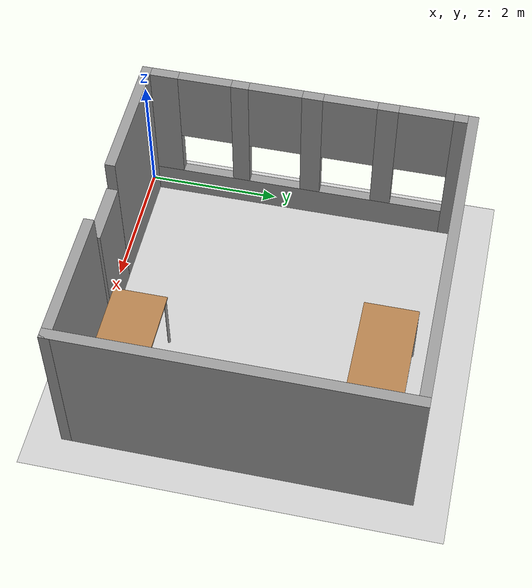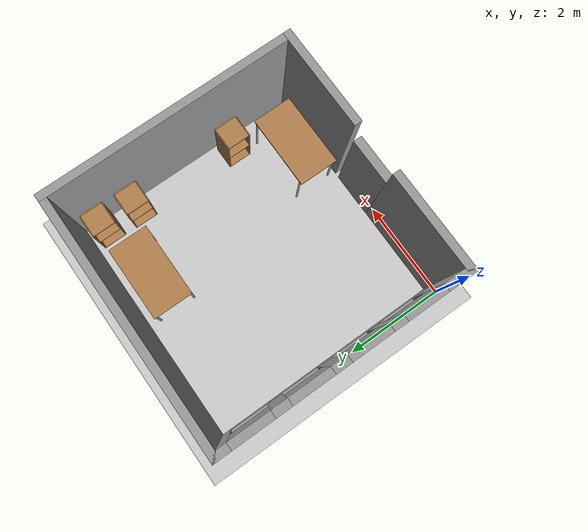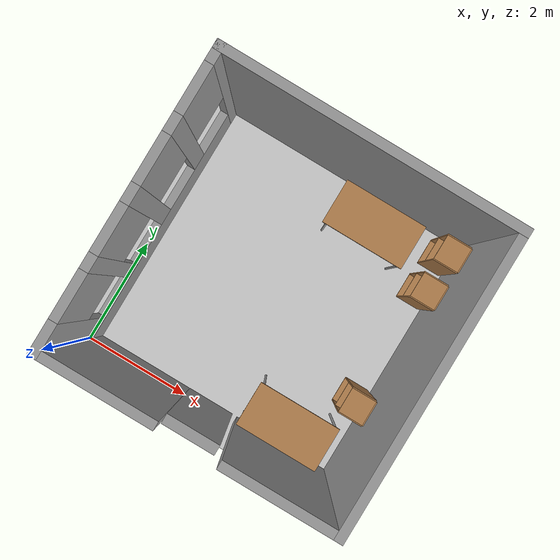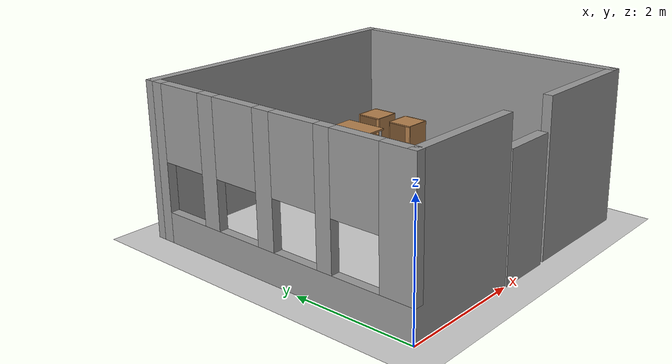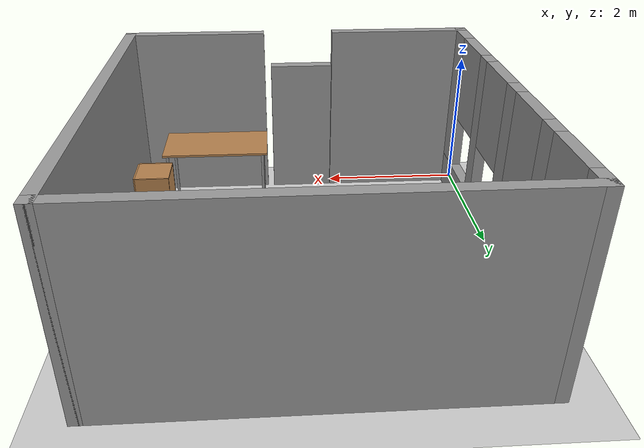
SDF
<sdf version="1.6">
 <world name="default">
  <light name="sun" type="directional">
   <pose>0 0 10 0 -0 0</pose>
   <diffuse>0.8 0.8 0.8 1</diffuse>
   <specular>0.2 0.2 0.2 1</specular>
   <attenuation>
    <range>1000</range>
    <constant>0.9</constant>
    <linear>0.01</linear>
    <quadratic>0.001</quadratic>
   </attenuation>
   <direction>-0.5 0.1 -0.9</direction>
  </light>
  <model name="ground_plane">
   <static>1</static>
   <link name="link">
    <collision name="collision">
     <geometry><plane><normal>0 0 1</normal><size>100 100</size></plane></geometry>
     <surface><friction><ode><mu>100</mu><mu2>50</mu2></ode></friction></surface>
    </collision>
    <visual name="visual">
     <cast_shadows>0</cast_shadows>
     <geometry><plane><normal>0 0 1</normal><size>100 100</size></plane></geometry>
     <material>
      <script><uri>file://media/materials/scripts/gazebo.material</uri><name>Gazebo/Grey</name></script>
     </material>
    </visual>
   </link>
  </model>
  <gravity>0 0 -9.8</gravity>
  <magnetic_field>6e-06 2.3e-05 -4.2e-05</magnetic_field>
  <atmosphere type="adiabatic"/>
  <physics name="default_physics" default="0" type="ode">
   <max_step_size>0.001</max_step_size>
   <real_time_factor>1</real_time_factor>
   <real_time_update_rate>1000</real_time_update_rate>
  </physics>
  <scene><ambient>0.4 0.4 0.4 1</ambient><background>0.7 0.7 0.7 1</background><shadows>1</shadows></scene>
  <spherical_coordinates>
   <surface_model>EARTH_WGS84</surface_model>
   <latitude_deg>0</latitude_deg>
   <longitude_deg>0</longitude_deg>
   <elevation>0</elevation>
   <heading_deg>0</heading_deg>
  </spherical_coordinates>
  <model name="lab">
   <pose>2.52123 2.50109 0 0 -0 0</pose>
   <link name="Door_1">
    <collision name="Door_1_Collision">
     <geometry><box><size>0.9 0.17 2</size></box></geometry>
     <pose>0 0 1 0 -0 0</pose>
    </collision>
    <visual name="Door_1_Visual">
     <pose>0 0 1 0 -0 0</pose>
     <geometry><box><size>0.9 0.17 2</size></box></geometry>
     <material>
      <script><uri>file://media/materials/scripts/gazebo.material</uri><name>Gazebo/Grey</name></script>
     </material>
    </visual>
    <pose>-0.042547 -2.43243 0 0 -0 0</pose>
   </link>
   <link name="Wall_11">
    <collision name="Wall_11_Collision">
     <geometry><box><size>5 0.15 2.5</size></box></geometry>
     <pose>0 0 1.25 0 -0 0</pose>
    </collision>
    <visual name="Wall_11_Visual">
     <pose>0 0 1.25 0 -0 0</pose>
     <geometry><box><size>5 0.15 2.5</size></box></geometry>
     <material>
      <script><uri>file://media/materials/scripts/gazebo.material</uri><name>Gazebo/Grey</name></script>
      <ambient>1 1 1 1</ambient>
     </material>
     <meta><layer>0</layer></meta>
    </visual>
    <pose>0 2.425 0 0 -0 0</pose>
   </link>
   <link name="Wall_12">
    <collision name="Wall_12_Collision">
     <geometry><box><size>5 0.15 2.5</size></box></geometry>
     <pose>0 0 1.25 0 -0 0</pose>
    </collision>
    <visual name="Wall_12_Visual">
     <pose>0 0 1.25 0 -0 0</pose>
     <geometry><box><size>5 0.15 2.5</size></box></geometry>
     <material>
      <script><uri>file://media/materials/scripts/gazebo.material</uri><name>Gazebo/Grey</name></script>
      <ambient>1 1 1 1</ambient>
     </material>
     <meta><layer>0</layer></meta>
    </visual>
    <pose>2.425 0 0 0 0 -1.5708</pose>
   </link>
   <link name="Wall_14">
    <collision name="Wall_14_Collision">
     <geometry><box><size>2 0.15 2.5</size></box></geometry>
     <pose>0 0 1.25 0 -0 0</pose>
    </collision>
    <visual name="Wall_14_Visual">
     <pose>0 0 1.25 0 -0 0</pose>
     <geometry><box><size>2 0.15 2.5</size></box></geometry>
     <material>
      <script><uri>file://media/materials/scripts/gazebo.material</uri><name>Gazebo/Grey</name></script>
      <ambient>1 1 1 1</ambient>
     </material>
     <meta><layer>0</layer></meta>
    </visual>
    <pose>1.5 -2.425 0 0 -0 3.14159</pose>
   </link>
   <link name="Wall_7">
    <pose>-2.425 0 0 0 0 -1.5708</pose>
    <visual name="Wall_7_Visual_0">
     <pose>-2.32711 0 1.25 0 -0 0</pose>
     <geometry><box><size>0.345788 0.15 2.5</size></box></geometry>
     <material>
      <script><uri>file://media/materials/scripts/gazebo.material</uri><name>Gazebo/Grey</name></script>
      <ambient>1 1 1 1</ambient>
     </material>
     <meta><layer>0</layer></meta>
    </visual>
    <collision name="Wall_7_Collision_0">
     <geometry><box><size>0.345788 0.15 2.5</size></box></geometry>
     <pose>-2.32711 0 1.25 0 -0 0</pose>
    </collision>
    <visual name="Wall_7_Visual_1">
     <pose>0.172894 0 0.25 0 -0 0</pose>
     <geometry><box><size>4.65421 0.15 0.5</size></box></geometry>
     <material>
      <script><uri>file://media/materials/scripts/gazebo.material</uri><name>Gazebo/Grey</name></script>
      <ambient>1 1 1 1</ambient>
     </material>
     <meta><layer>0</layer></meta>
    </visual>
    <collision name="Wall_7_Collision_1">
     <geometry><box><size>4.65421 0.15 0.5</size></box></geometry>
     <pose>0.172894 0 0.25 0 -0 0</pose>
    </collision>
    <visual name="Wall_7_Visual_2">
     <pose>-1.19908 0 1.5 0 -0 0</pose>
     <geometry><box><size>0.310269 0.15 2</size></box></geometry>
     <material>
      <script><uri>file://media/materials/scripts/gazebo.material</uri><name>Gazebo/Grey</name></script>
      <ambient>1 1 1 1</ambient>
     </material>
     <meta><layer>0</layer></meta>
    </visual>
    <collision name="Wall_7_Collision_2">
     <geometry><box><size>0.310269 0.15 2</size></box></geometry>
     <pose>-1.19908 0 1.5 0 -0 0</pose>
    </collision>
    <visual name="Wall_7_Visual_3">
     <pose>-0.088809 0 1.5 0 -0 0</pose>
     <geometry><box><size>0.31027 0.15 2</size></box></geometry>
     <material>
      <script><uri>file://media/materials/scripts/gazebo.material</uri><name>Gazebo/Grey</name></script>
      <ambient>1 1 1 1</ambient>
     </material>
     <meta><layer>0</layer></meta>
    </visual>
    <collision name="Wall_7_Collision_3">
     <geometry><box><size>0.31027 0.15 2</size></box></geometry>
     <pose>-0.088809 0 1.5 0 -0 0</pose>
    </collision>
    <visual name="Wall_7_Visual_4">
     <pose>0.99833 0 1.5 0 -0 0</pose>
     <geometry><box><size>0.264008 0.15 2</size></box></geometry>
     <material>
      <script><uri>file://media/materials/scripts/gazebo.material</uri><name>Gazebo/Grey</name></script>
      <ambient>1 1 1 1</ambient>
     </material>
     <meta><layer>0</layer></meta>
    </visual>
    <collision name="Wall_7_Collision_4">
     <geometry><box><size>0.264008 0.15 2</size></box></geometry>
     <pose>0.99833 0 1.5 0 -0 0</pose>
    </collision>
    <visual name="Wall_7_Visual_5">
     <pose>2.21517 0 1.5 0 -0 0</pose>
     <geometry><box><size>0.569666 0.15 2</size></box></geometry>
     <material>
      <script><uri>file://media/materials/scripts/gazebo.material</uri><name>Gazebo/Grey</name></script>
      <ambient>1 1 1 1</ambient>
     </material>
     <meta><layer>0</layer></meta>
    </visual>
    <collision name="Wall_7_Collision_5">
     <geometry><box><size>0.569666 0.15 2</size></box></geometry>
     <pose>2.21517 0 1.5 0 -0 0</pose>
    </collision>
    <visual name="Wall_7_Visual_6">
     <pose>-1.75421 0 1.9 0 -0 0</pose>
     <geometry><box><size>0.8 0.15 1.2</size></box></geometry>
     <material>
      <script><uri>file://media/materials/scripts/gazebo.material</uri><name>Gazebo/Grey</name></script>
      <ambient>1 1 1 1</ambient>
     </material>
     <meta><layer>0</layer></meta>
    </visual>
    <collision name="Wall_7_Collision_6">
     <geometry><box><size>0.8 0.15 1.2</size></box></geometry>
     <pose>-1.75421 0 1.9 0 -0 0</pose>
    </collision>
    <visual name="Wall_7_Visual_7">
     <pose>-0.643943 0 1.9 0 -0 0</pose>
     <geometry><box><size>0.8 0.15 1.2</size></box></geometry>
     <material>
      <script><uri>file://media/materials/scripts/gazebo.material</uri><name>Gazebo/Grey</name></script>
      <ambient>1 1 1 1</ambient>
     </material>
     <meta><layer>0</layer></meta>
    </visual>
    <collision name="Wall_7_Collision_7">
     <geometry><box><size>0.8 0.15 1.2</size></box></geometry>
     <pose>-0.643943 0 1.9 0 -0 0</pose>
    </collision>
    <visual name="Wall_7_Visual_8">
     <pose>0.466326 0 1.9 0 -0 0</pose>
     <geometry><box><size>0.8 0.15 1.2</size></box></geometry>
     <material>
      <script><uri>file://media/materials/scripts/gazebo.material</uri><name>Gazebo/Grey</name></script>
      <ambient>1 1 1 1</ambient>
     </material>
     <meta><layer>0</layer></meta>
    </visual>
    <collision name="Wall_7_Collision_8">
     <geometry><box><size>0.8 0.15 1.2</size></box></geometry>
     <pose>0.466326 0 1.9 0 -0 0</pose>
    </collision>
    <visual name="Wall_7_Visual_9">
     <pose>1.53033 0 1.9 0 -0 0</pose>
     <geometry><box><size>0.8 0.15 1.2</size></box></geometry>
     <material>
      <script><uri>file://media/materials/scripts/gazebo.material</uri><name>Gazebo/Grey</name></script>
      <ambient>1 1 1 1</ambient>
     </material>
     <meta><layer>0</layer></meta>
    </visual>
    <collision name="Wall_7_Collision_9">
     <geometry><box><size>0.8 0.15 1.2</size></box></geometry>
     <pose>1.53033 0 1.9 0 -0 0</pose>
    </collision>
   </link>
   <link name="Wall_8">
    <collision name="Wall_8_Collision">
     <geometry><box><size>2 0.15 2.5</size></box></geometry>
     <pose>0 0 1.25 0 -0 0</pose>
    </collision>
    <visual name="Wall_8_Visual">
     <pose>0 0 1.25 0 -0 0</pose>
     <geometry><box><size>2 0.15 2.5</size></box></geometry>
     <material>
      <script><uri>file://media/materials/scripts/gazebo.material</uri><name>Gazebo/Grey</name></script>
      <ambient>1 1 1 1</ambient>
     </material>
     <meta><layer>0</layer></meta>
    </visual>
    <pose>-1.5 -2.425 0 0 -0 0</pose>
   </link>
   <static>1</static>
  </model>
  <model name="table">
   <static>1</static>
   <link name="link">
    <collision name="surface">
     <pose>0 0 1 0 -0 0</pose>
     <geometry><box><size>1.5 0.8 0.03</size></box></geometry>
     <surface><friction><ode><mu>0.6</mu><mu2>0.6</mu2></ode></friction></surface>
    </collision>
    <visual name="visual1">
     <pose>0 0 1 0 -0 0</pose>
     <geometry><box><size>1.5 0.8 0.03</size></box></geometry>
     <material>
      <script><uri>file://media/materials/scripts/gazebo.material</uri><name>Gazebo/Wood</name></script>
     </material>
    </visual>
    <collision name="front_left_leg">
     <pose>0.68 0.38 0.5 0 -0 0</pose>
     <geometry><cylinder><radius>0.02</radius><length>1</length></cylinder></geometry>
    </collision>
    <visual name="front_left_leg">
     <pose>0.68 0.38 0.5 0 -0 0</pose>
     <geometry><cylinder><radius>0.02</radius><length>1</length></cylinder></geometry>
     <material>
      <script><uri>file://media/materials/scripts/gazebo.material</uri><name>Gazebo/Grey</name></script>
     </material>
    </visual>
    <collision name="front_right_leg">
     <pose>0.68 -0.38 0.5 0 -0 0</pose>
     <geometry><cylinder><radius>0.02</radius><length>1</length></cylinder></geometry>
    </collision>
    <visual name="front_right_leg">
     <pose>0.68 -0.38 0.5 0 -0 0</pose>
     <geometry><cylinder><radius>0.02</radius><length>1</length></cylinder></geometry>
     <material>
      <script><uri>file://media/materials/scripts/gazebo.material</uri><name>Gazebo/Grey</name></script>
     </material>
    </visual>
    <collision name="back_right_leg">
     <pose>-0.68 -0.38 0.5 0 -0 0</pose>
     <geometry><cylinder><radius>0.02</radius><length>1</length></cylinder></geometry>
    </collision>
    <visual name="back_right_leg">
     <pose>-0.68 -0.38 0.5 0 -0 0</pose>
     <geometry><cylinder><radius>0.02</radius><length>1</length></cylinder></geometry>
     <material>
      <script><uri>file://media/materials/scripts/gazebo.material</uri><name>Gazebo/Grey</name></script>
     </material>
    </visual>
    <collision name="back_left_leg">
     <pose>-0.68 0.38 0.5 0 -0 0</pose>
     <geometry><cylinder><radius>0.02</radius><length>1</length></cylinder></geometry>
    </collision>
    <visual name="back_left_leg">
     <pose>-0.68 0.38 0.5 0 -0 0</pose>
     <geometry><cylinder><radius>0.02</radius><length>1</length></cylinder></geometry>
     <material>
      <script><uri>file://media/materials/scripts/gazebo.material</uri><name>Gazebo/Grey</name></script>
     </material>
    </visual>
   </link>
   <pose>3.2671 4.23708 0 0 -0 0</pose>
  </model>
  <model name="table_0">
   <static>1</static>
   <link name="link">
    <collision name="surface">
     <pose>0 0 1 0 -0 0</pose>
     <geometry><box><size>1.5 0.8 0.03</size></box></geometry>
     <surface><friction><ode><mu>0.6</mu><mu2>0.6</mu2></ode></friction></surface>
    </collision>
    <visual name="visual1">
     <pose>0 0 1 0 -0 0</pose>
     <geometry><box><size>1.5 0.8 0.03</size></box></geometry>
     <material>
      <script><uri>file://media/materials/scripts/gazebo.material</uri><name>Gazebo/Wood</name></script>
     </material>
    </visual>
    <collision name="front_left_leg">
     <pose>0.68 0.38 0.5 0 -0 0</pose>
     <geometry><cylinder><radius>0.02</radius><length>1</length></cylinder></geometry>
    </collision>
    <visual name="front_left_leg">
     <pose>0.68 0.38 0.5 0 -0 0</pose>
     <geometry><cylinder><radius>0.02</radius><length>1</length></cylinder></geometry>
     <material>
      <script><uri>file://media/materials/scripts/gazebo.material</uri><name>Gazebo/Grey</name></script>
     </material>
    </visual>
    <collision name="front_right_leg">
     <pose>0.68 -0.38 0.5 0 -0 0</pose>
     <geometry><cylinder><radius>0.02</radius><length>1</length></cylinder></geometry>
    </collision>
    <visual name="front_right_leg">
     <pose>0.68 -0.38 0.5 0 -0 0</pose>
     <geometry><cylinder><radius>0.02</radius><length>1</length></cylinder></geometry>
     <material>
      <script><uri>file://media/materials/scripts/gazebo.material</uri><name>Gazebo/Grey</name></script>
     </material>
    </visual>
    <collision name="back_right_leg">
     <pose>-0.68 -0.38 0.5 0 -0 0</pose>
     <geometry><cylinder><radius>0.02</radius><length>1</length></cylinder></geometry>
    </collision>
    <visual name="back_right_leg">
     <pose>-0.68 -0.38 0.5 0 -0 0</pose>
     <geometry><cylinder><radius>0.02</radius><length>1</length></cylinder></geometry>
     <material>
      <script><uri>file://media/materials/scripts/gazebo.material</uri><name>Gazebo/Grey</name></script>
     </material>
    </visual>
    <collision name="back_left_leg">
     <pose>-0.68 0.38 0.5 0 -0 0</pose>
     <geometry><cylinder><radius>0.02</radius><length>1</length></cylinder></geometry>
    </collision>
    <visual name="back_left_leg">
     <pose>-0.68 0.38 0.5 0 -0 0</pose>
     <geometry><cylinder><radius>0.02</radius><length>1</length></cylinder></geometry>
     <material>
      <script><uri>file://media/materials/scripts/gazebo.material</uri><name>Gazebo/Grey</name></script>
     </material>
    </visual>
   </link>
   <pose>3.76977 0.682208 0 0 -0 0</pose>
  </model>
  <model name="cabinet">
   <static>1</static>
   <link name="cabinet_bottom_plate">
    <inertial>
     <pose>0 0 -1 0 -0 0</pose>
     <inertia><ixx>2.05</ixx><ixy>0</ixy><ixz>0</ixz><iyy>2.05</iyy><iyz>0</iyz><izz>2.05</izz></inertia>
     <mass>25</mass>
    </inertial>
    <collision name="cabinet_bottom_plate_geom">
     <pose>0 0 0.01 0 -0 0</pose>
     <geometry><box><size>0.45 0.45 0.02</size></box></geometry>
    </collision>
    <visual name="cabinet_bottom_plate_geom_visual">
     <pose>0 0 0.01 0 -0 0</pose>
     <geometry><box><size>0.45 0.45 0.02</size></box></geometry>
     <material>
      <script><uri>file://media/materials/scripts/gazebo.material</uri><name>Gazebo/Wood</name></script>
     </material>
    </visual>
    <collision name="cabinet_bottom_plate_geom_cabinet_back_plate">
     <pose>0.235 0 0.51 0 -0 0</pose>
     <geometry><box><size>0.02 0.45 1.02</size></box></geometry>
    </collision>
    <visual name="cabinet_bottom_plate_geom_cabinet_back_plate_visual">
     <pose>0.235 0 0.51 0 -0 0</pose>
     <geometry><box><size>0.02 0.45 1.02</size></box></geometry>
     <material>
      <script><uri>file://media/materials/scripts/gazebo.material</uri><name>Gazebo/Wood</name></script>
     </material>
    </visual>
    <collision name="cabinet_bottom_plate_geom_cabinet_left_plate">
     <pose>0 0.235 0.51 0 -0 0</pose>
     <geometry><box><size>0.45 0.02 1.02</size></box></geometry>
    </collision>
    <visual name="cabinet_bottom_plate_geom_cabinet_left_plate_visual">
     <pose>0 0.235 0.51 0 -0 0</pose>
     <geometry><box><size>0.45 0.02 1.02</size></box></geometry>
     <material>
      <script><uri>file://media/materials/scripts/gazebo.material</uri><name>Gazebo/Wood</name></script>
     </material>
    </visual>
    <collision name="cabinet_bottom_plate_geom_cabinet_middle_plate">
     <pose>0 0 0.51 0 -0 0</pose>
     <geometry><box><size>0.45 0.45 0.02</size></box></geometry>
    </collision>
    <visual name="cabinet_bottom_plate_geom_cabinet_middle_plate_visual">
     <pose>0 0 0.51 0 -0 0</pose>
     <geometry><box><size>0.45 0.45 0.02</size></box></geometry>
     <material>
      <script><uri>file://media/materials/scripts/gazebo.material</uri><name>Gazebo/Wood</name></script>
     </material>
    </visual>
    <collision name="cabinet_bottom_plate_geom_cabinet_right_plate">
     <pose>0 -0.235 0.51 0 -0 0</pose>
     <geometry><box><size>0.45 0.02 1.02</size></box></geometry>
    </collision>
    <visual name="cabinet_bottom_plate_geom_cabinet_right_plate_visual">
     <pose>0 -0.235 0.51 0 -0 0</pose>
     <geometry><box><size>0.45 0.02 1.02</size></box></geometry>
     <material>
      <script><uri>file://media/materials/scripts/gazebo.material</uri><name>Gazebo/Wood</name></script>
     </material>
    </visual>
    <collision name="cabinet_bottom_plate_geom_cabinet_top_plate">
     <pose>0 0 1.01 0 -0 0</pose>
     <geometry><box><size>0.45 0.45 0.02</size></box></geometry>
    </collision>
    <visual name="cabinet_bottom_plate_geom_cabinet_top_plate_visual">
     <pose>0 0 1.01 0 -0 0</pose>
     <geometry><box><size>0.45 0.45 0.02</size></box></geometry>
     <material>
      <script><uri>file://media/materials/scripts/gazebo.material</uri><name>Gazebo/Wood</name></script>
     </material>
    </visual>
   </link>
   <pose>4.6083 4.4879 0 0 -0 0</pose>
  </model>
  <model name="cabinet_0">
   <static>1</static>
   <link name="cabinet_bottom_plate">
    <inertial>
     <pose>0 0 -1 0 -0 0</pose>
     <inertia><ixx>2.05</ixx><ixy>0</ixy><ixz>0</ixz><iyy>2.05</iyy><iyz>0</iyz><izz>2.05</izz></inertia>
     <mass>25</mass>
    </inertial>
    <collision name="cabinet_bottom_plate_geom">
     <pose>0 0 0.01 0 -0 0</pose>
     <geometry><box><size>0.45 0.45 0.02</size></box></geometry>
    </collision>
    <visual name="cabinet_bottom_plate_geom_visual">
     <pose>0 0 0.01 0 -0 0</pose>
     <geometry><box><size>0.45 0.45 0.02</size></box></geometry>
     <material>
      <script><uri>file://media/materials/scripts/gazebo.material</uri><name>Gazebo/Wood</name></script>
     </material>
    </visual>
    <collision name="cabinet_bottom_plate_geom_cabinet_back_plate">
     <pose>0.235 0 0.51 0 -0 0</pose>
     <geometry><box><size>0.02 0.45 1.02</size></box></geometry>
    </collision>
    <visual name="cabinet_bottom_plate_geom_cabinet_back_plate_visual">
     <pose>0.235 0 0.51 0 -0 0</pose>
     <geometry><box><size>0.02 0.45 1.02</size></box></geometry>
     <material>
      <script><uri>file://media/materials/scripts/gazebo.material</uri><name>Gazebo/Wood</name></script>
     </material>
    </visual>
    <collision name="cabinet_bottom_plate_geom_cabinet_left_plate">
     <pose>0 0.235 0.51 0 -0 0</pose>
     <geometry><box><size>0.45 0.02 1.02</size></box></geometry>
    </collision>
    <visual name="cabinet_bottom_plate_geom_cabinet_left_plate_visual">
     <pose>0 0.235 0.51 0 -0 0</pose>
     <geometry><box><size>0.45 0.02 1.02</size></box></geometry>
     <material>
      <script><uri>file://media/materials/scripts/gazebo.material</uri><name>Gazebo/Wood</name></script>
     </material>
    </visual>
    <collision name="cabinet_bottom_plate_geom_cabinet_middle_plate">
     <pose>0 0 0.51 0 -0 0</pose>
     <geometry><box><size>0.45 0.45 0.02</size></box></geometry>
    </collision>
    <visual name="cabinet_bottom_plate_geom_cabinet_middle_plate_visual">
     <pose>0 0 0.51 0 -0 0</pose>
     <geometry><box><size>0.45 0.45 0.02</size></box></geometry>
     <material>
      <script><uri>file://media/materials/scripts/gazebo.material</uri><name>Gazebo/Wood</name></script>
     </material>
    </visual>
    <collision name="cabinet_bottom_plate_geom_cabinet_right_plate">
     <pose>0 -0.235 0.51 0 -0 0</pose>
     <geometry><box><size>0.45 0.02 1.02</size></box></geometry>
    </collision>
    <visual name="cabinet_bottom_plate_geom_cabinet_right_plate_visual">
     <pose>0 -0.235 0.51 0 -0 0</pose>
     <geometry><box><size>0.45 0.02 1.02</size></box></geometry>
     <material>
      <script><uri>file://media/materials/scripts/gazebo.material</uri><name>Gazebo/Wood</name></script>
     </material>
    </visual>
    <collision name="cabinet_bottom_plate_geom_cabinet_top_plate">
     <pose>0 0 1.01 0 -0 0</pose>
     <geometry><box><size>0.45 0.45 0.02</size></box></geometry>
    </collision>
    <visual name="cabinet_bottom_plate_geom_cabinet_top_plate_visual">
     <pose>0 0 1.01 0 -0 0</pose>
     <geometry><box><size>0.45 0.45 0.02</size></box></geometry>
     <material>
      <script><uri>file://media/materials/scripts/gazebo.material</uri><name>Gazebo/Wood</name></script>
     </material>
    </visual>
   </link>
   <pose>4.59575 3.76775 0 0 -0 0</pose>
  </model>
  <model name="cabinet_1">
   <static>1</static>
   <link name="cabinet_bottom_plate">
    <inertial>
     <pose>0 0 -1 0 -0 0</pose>
     <inertia><ixx>2.05</ixx><ixy>0</ixy><ixz>0</ixz><iyy>2.05</iyy><iyz>0</iyz><izz>2.05</izz></inertia>
     <mass>25</mass>
    </inertial>
    <collision name="cabinet_bottom_plate_geom">
     <pose>0 0 0.01 0 -0 0</pose>
     <geometry><box><size>0.45 0.45 0.02</size></box></geometry>
    </collision>
    <visual name="cabinet_bottom_plate_geom_visual">
     <pose>0 0 0.01 0 -0 0</pose>
     <geometry><box><size>0.45 0.45 0.02</size></box></geometry>
     <material>
      <script><uri>file://media/materials/scripts/gazebo.material</uri><name>Gazebo/Wood</name></script>
     </material>
    </visual>
    <collision name="cabinet_bottom_plate_geom_cabinet_back_plate">
     <pose>0.235 0 0.51 0 -0 0</pose>
     <geometry><box><size>0.02 0.45 1.02</size></box></geometry>
    </collision>
    <visual name="cabinet_bottom_plate_geom_cabinet_back_plate_visual">
     <pose>0.235 0 0.51 0 -0 0</pose>
     <geometry><box><size>0.02 0.45 1.02</size></box></geometry>
     <material>
      <script><uri>file://media/materials/scripts/gazebo.material</uri><name>Gazebo/Wood</name></script>
     </material>
    </visual>
    <collision name="cabinet_bottom_plate_geom_cabinet_left_plate">
     <pose>0 0.235 0.51 0 -0 0</pose>
     <geometry><box><size>0.45 0.02 1.02</size></box></geometry>
    </collision>
    <visual name="cabinet_bottom_plate_geom_cabinet_left_plate_visual">
     <pose>0 0.235 0.51 0 -0 0</pose>
     <geometry><box><size>0.45 0.02 1.02</size></box></geometry>
     <material>
      <script><uri>file://media/materials/scripts/gazebo.material</uri><name>Gazebo/Wood</name></script>
     </material>
    </visual>
    <collision name="cabinet_bottom_plate_geom_cabinet_middle_plate">
     <pose>0 0 0.51 0 -0 0</pose>
     <geometry><box><size>0.45 0.45 0.02</size></box></geometry>
    </collision>
    <visual name="cabinet_bottom_plate_geom_cabinet_middle_plate_visual">
     <pose>0 0 0.51 0 -0 0</pose>
     <geometry><box><size>0.45 0.45 0.02</size></box></geometry>
     <material>
      <script><uri>file://media/materials/scripts/gazebo.material</uri><name>Gazebo/Wood</name></script>
     </material>
    </visual>
    <collision name="cabinet_bottom_plate_geom_cabinet_right_plate">
     <pose>0 -0.235 0.51 0 -0 0</pose>
     <geometry><box><size>0.45 0.02 1.02</size></box></geometry>
    </collision>
    <visual name="cabinet_bottom_plate_geom_cabinet_right_plate_visual">
     <pose>0 -0.235 0.51 0 -0 0</pose>
     <geometry><box><size>0.45 0.02 1.02</size></box></geometry>
     <material>
      <script><uri>file://media/materials/scripts/gazebo.material</uri><name>Gazebo/Wood</name></script>
     </material>
    </visual>
    <collision name="cabinet_bottom_plate_geom_cabinet_top_plate">
     <pose>0 0 1.01 0 -0 0</pose>
     <geometry><box><size>0.45 0.45 0.02</size></box></geometry>
    </collision>
    <visual name="cabinet_bottom_plate_geom_cabinet_top_plate_visual">
     <pose>0 0 1.01 0 -0 0</pose>
     <geometry><box><size>0.45 0.45 0.02</size></box></geometry>
     <material>
      <script><uri>file://media/materials/scripts/gazebo.material</uri><name>Gazebo/Wood</name></script>
     </material>
    </visual>
   </link>
   <pose>4.5673 1.5509 0 0 -0 0</pose>
  </model>
 </world>
</sdf>
